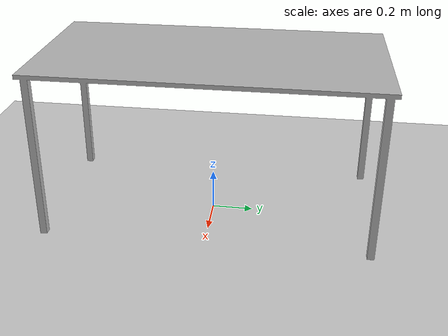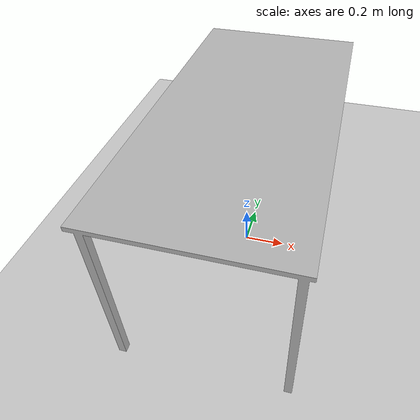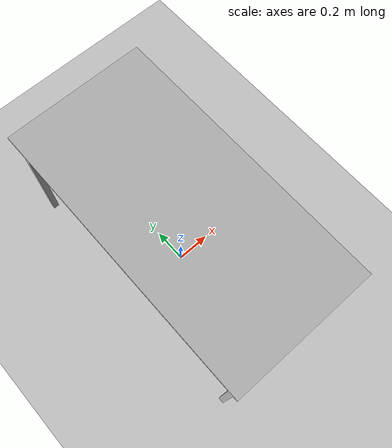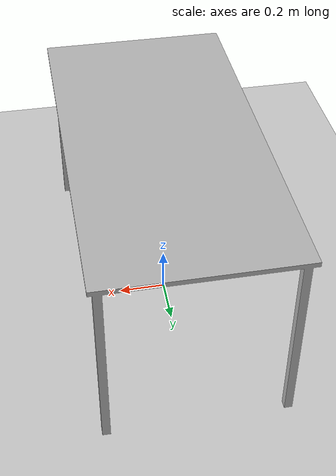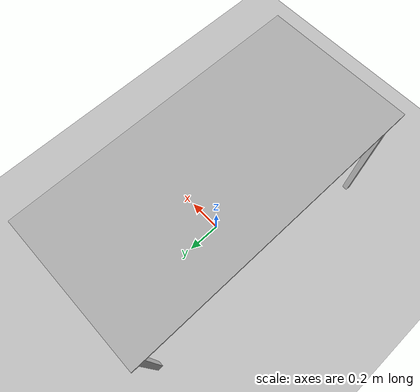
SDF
<sdf version="1.4">
  <world name="default">
    <scene>
      <ambient>0.4 0.4 0.4 1</ambient>
      <background>0.7 0.7 0.7 1</background>
      <shadows>true</shadows>
    </scene>

    <!-- A global light source -->
    <include>
      <uri>model://sun</uri>
    </include>

    <!-- A ground plane -->
    <include>
      <uri>model://ground_plane</uri>
    </include>

    <physics type="ode">
      <real_time_update_rate>1000.0</real_time_update_rate>
      <max_step_size>0.001</max_step_size>
      <real_time_factor>1</real_time_factor>
      <ode>
        <solver>
          <type>quick</type>
          <iters>150</iters>
          <precon_iters>0</precon_iters>
          <sor>1.400000</sor>
          <use_dynamic_moi_rescaling>1</use_dynamic_moi_rescaling>
        </solver>
        <constraints>
          <cfm>0.00001</cfm>
          <erp>0.2</erp>
          <contact_max_correcting_vel>2000.000000</contact_max_correcting_vel>
          <contact_surface_layer>0.01000</contact_surface_layer>
        </constraints>
      </ode>
    </physics>
    <model name='igent_table'>
      <static>1</static>
      <link name='link'>
        <collision name='base'>
          <pose frame=''>0 0 0.42 0 0 0</pose>
          <geometry>
            <box>
              <size>0.8 1.6 0.8</size>
            </box>
          </geometry>
          <max_contacts>10</max_contacts>
          <surface>
            <contact>
              <ode/>
            </contact>
            <bounce/>
            <friction>
              <torsional>
                <ode/>
              </torsional>
              <ode/>
            </friction>
          </surface>
        </collision>
        <visual name='visual'>
          <pose frame=''>0 0 0.02 0 0 0</pose>
          <geometry>
            <mesh>
              <uri>model://igent_table/meshes/igent_table.dae</uri>
              <scale>1 1 1</scale>
            </mesh>
          </geometry>
        </visual>
        <self_collide>0</self_collide>
        <kinematic>0</kinematic>
        <gravity>1</gravity>
      </link>
    </model>
  </world>
</sdf>
